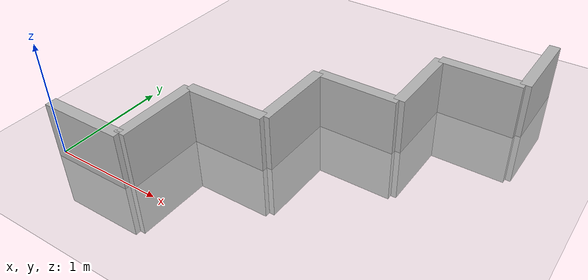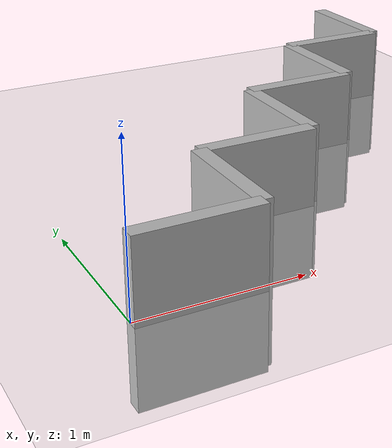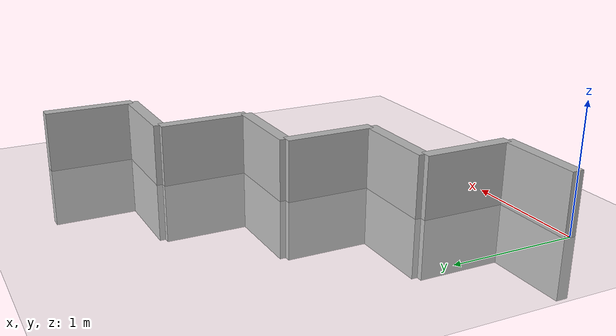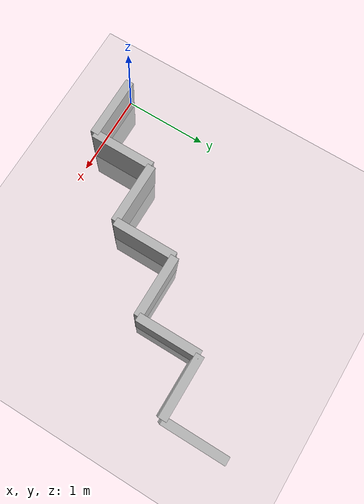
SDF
<?xml version="1.0" ?>
<sdf version="1.6">
  <world name="default">
    <include>
      <uri>model://ground_plane</uri>
    </include>
    <include>
      <uri>model://sun</uri>
    </include>

    <model name="wall_0">
      <static>true</static>
      <link name="link">
        <pose>0.375 0 0 0 0 0</pose>
        <collision name="collision">
          <geometry>
            <box>
              <size>0.75 0.1 1.0</size>
            </box>
          </geometry>
        </collision>
        <visual name="visual">
          <geometry>
            <box>
              <size>0.75 0.1 1.0</size>
            </box>
          </geometry>
        </visual>
      </link>
    </model>

    <model name="wall_1">
      <static>true</static>
      <link name="link">
        <pose>0.75 0.375 0 0 0 1.57</pose>
        <collision name="collision">
          <geometry>
            <box>
              <size>0.75 0.1 1.0</size>
            </box>
          </geometry>
        </collision>
        <visual name="visual">
          <geometry>
            <box>
              <size>0.75 0.1 1.0</size>
            </box>
          </geometry>
        </visual>
      </link>
    </model>

    <model name="wall_2">
      <static>true</static>
      <link name="link">
        <pose>1.125 0.75 0 0 0 0</pose>
        <collision name="collision">
          <geometry>
            <box>
              <size>0.75 0.1 1.0</size>
            </box>
          </geometry>
        </collision>
        <visual name="visual">
          <geometry>
            <box>
              <size>0.75 0.1 1.0</size>
            </box>
          </geometry>
        </visual>
      </link>
    </model>

    <model name="wall_3">
      <static>true</static>
      <link name="link">
        <pose>1.5 1.125 0 0 0 1.57</pose>
        <collision name="collision">
          <geometry>
            <box>
              <size>0.75 0.1 1.0</size>
            </box>
          </geometry>
        </collision>
        <visual name="visual">
          <geometry>
            <box>
              <size>0.75 0.1 1.0</size>
            </box>
          </geometry>
        </visual>
      </link>
    </model>

    <model name="wall_4">
      <static>true</static>
      <link name="link">
        <pose>1.875 1.5 0 0 0 0</pose>
        <collision name="collision">
          <geometry>
            <box>
              <size>0.75 0.1 1.0</size>
            </box>
          </geometry>
        </collision>
        <visual name="visual">
          <geometry>
            <box>
              <size>0.75 0.1 1.0</size>
            </box>
          </geometry>
        </visual>
      </link>
    </model>

    <model name="wall_5">
      <static>true</static>
      <link name="link">
        <pose>2.25 1.875 0 0 0 1.57</pose>
        <collision name="collision">
          <geometry>
            <box>
              <size>0.75 0.1 1.0</size>
            </box>
          </geometry>
        </collision>
        <visual name="visual">
          <geometry>
            <box>
              <size>0.75 0.1 1.0</size>
            </box>
          </geometry>
        </visual>
      </link>
    </model>

    <model name="wall_6">
      <static>true</static>
      <link name="link">
        <pose>2.625 2.25 0 0 0 0</pose>
        <collision name="collision">
          <geometry>
            <box>
              <size>0.75 0.1 1.0</size>
            </box>
          </geometry>
        </collision>
        <visual name="visual">
          <geometry>
            <box>
              <size>0.75 0.1 1.0</size>
            </box>
          </geometry>
        </visual>
      </link>
    </model>

    <model name="wall_7">
      <static>true</static>
      <link name="link">
        <pose>3.0 2.625 0 0 0 1.57</pose>
        <collision name="collision">
          <geometry>
            <box>
              <size>0.75 0.1 1.0</size>
            </box>
          </geometry>
        </collision>
        <visual name="visual">
          <geometry>
            <box>
              <size>0.75 0.1 1.0</size>
            </box>
          </geometry>
        </visual>
      </link>
    </model>

  </world>
</sdf>
